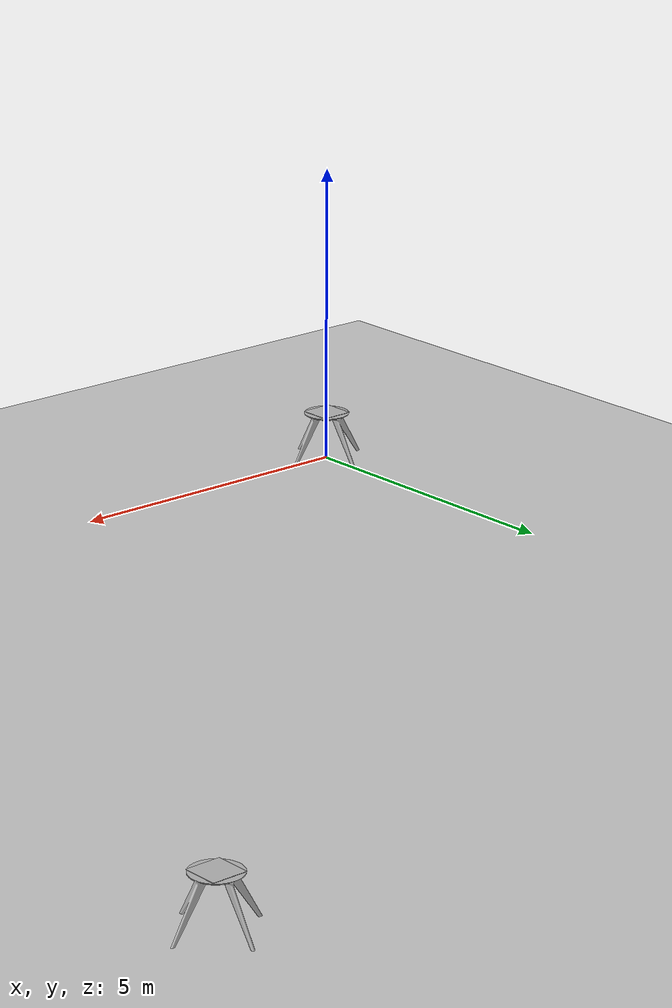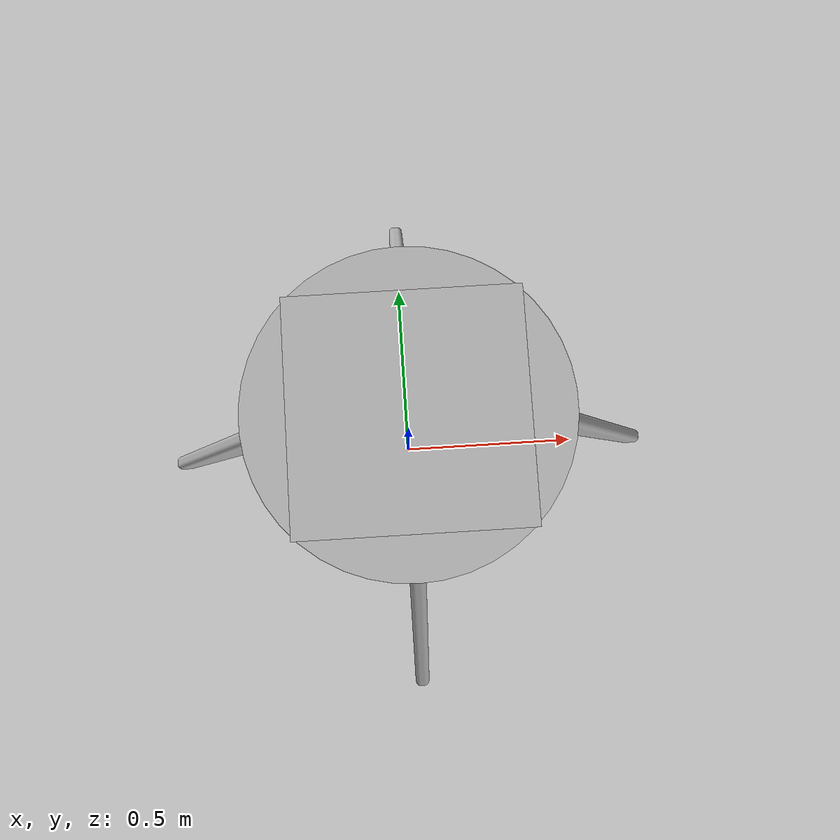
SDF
<?xml version="1.0" ?>
<sdf version="1.4">

	<world name="Charge Site">

	    <include>
			<uri>model://ground_plane</uri>
	    </include>

	    <include>
      		<uri>model://sun</uri>
	    </include>

        <include>
      		<uri>model://Charge_Site</uri>
    	</include>

	    <plugin name="ros_interface_plugin" filename="librotors_gazebo_ros_interface_plugin.so"/>
	    <plugin name="ros_link_attacher_plugin" filename="libgazebo_ros_link_attacher.so"/>

	    <spherical_coordinates>

	    	<surface_model>EARTH_WGS84</surface_model>
	    	<latitude_deg>47.3667</latitude_deg>
	    	<longitude_deg>8.5500</longitude_deg>
	    	<elevation>500.0</elevation>
	    	<heading_deg>0</heading_deg>

	    </spherical_coordinates>

	    <physics type='ode'>

	    	<ode>
	    		<solver>
	    			<type>quick</type>
	    			<iters>1000</iters>
	    			<sor>1.3</sor>
	    		</solver>

	    		<constraints>
	    			<cfm>0</cfm>
	    			<erp>0.2</erp>
	    			<contact_max_correcting_vel>100</contact_max_correcting_vel>
	    			<contact_surface_layer>0.001</contact_surface_layer>
	    		</constraints>
	    	</ode>

	    	<max_step_size>0.01</max_step_size>
	    	<real_time_factor>1</real_time_factor>
	    	<real_time_update_rate>100</real_time_update_rate>
	    	<gravity>0 0 -9.8</gravity>

	    </physics>

	</world>
</sdf>

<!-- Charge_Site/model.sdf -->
<sdf version="1.4">

	<model name='charge_site_1'>

		<static>True</static>
		<pose frame=''>0 0 0.8 0 0 0</pose>

		<link name='link_1'>

			<pose frame=''>0 0 0 0 0 0</pose>

			<inertial>
		      <mass value="0.0001" />
		      <inertia ixx="0.0001" ixy="0.0001" ixz="0.0001" iyy="0.0001" iyz="0.0001" izz="0.0001" />
		    </inertial>

			<visual name='visual_1'>

				<geometry>
					<mesh>
						<uri>model://Charge_Site/meshes/charging.dae</uri>
						<scale>0.5 0.5 0.5</scale>
					</mesh>
				</geometry>

			</visual>

			<collision name='collision_1'>

				<geometry>
					<mesh>
						<uri>model://Charge_Site/meshes/charging.dae</uri>
						<scale>0.5 0.5 0.5</scale>
					</mesh>
				</geometry>

		    </collision>

		</link>

		<link name="link_2">

			<pose>0 0 0.01 0 0 0</pose>

			<inertial>
		      <mass value="0.0001" />
		      <inertia ixx="0.0001" ixy="0.0001" ixz="0.0001" iyy="0.0001" iyz="0.0001" izz="0.0001" />
		    </inertial>

			<visual name='visual_2'>

				<geometry>
					<mesh>
						<uri>model://Charge_Site/meshes/plate.dae</uri>
						<scale>0.03 0.03 0.03</scale>
					</mesh>
				</geometry>

			</visual>

		</link>

		<link name='link_3'>

			<pose frame=''>13 13 0 0 0 0</pose>

			<inertial>
		      <mass value="0.0001" />
		      <inertia ixx="0.0001" ixy="0.0001" ixz="0.0001" iyy="0.0001" iyz="0.0001" izz="0.0001" />
		    </inertial>

			<visual name='visual_1'>

				<geometry>
					<mesh>
						<uri>model://Charge_Site/meshes/charging.dae</uri>
						<scale>0.5 0.5 0.5</scale>
					</mesh>
				</geometry>

			</visual>

			<collision name='collision_1'>

				<geometry>
					<mesh>
						<uri>model://Charge_Site/meshes/charging.dae</uri>
						<scale>0.5 0.5 0.5</scale>
					</mesh>
				</geometry>

		    </collision>

		</link>

		<link name="link_4">

			<pose>13 13 0.01 0 0 0</pose>

			<inertial>
		      <mass value="0.0001" />
		      <inertia ixx="0.0001" ixy="0.0001" ixz="0.0001" iyy="0.0001" iyz="0.0001" izz="0.0001" />
		    </inertial>

			<visual name='visual_2'>

				<geometry>
					<mesh>
						<uri>model://Charge_Site/meshes/plate.dae</uri>
						<scale>0.03 0.03 0.03</scale>
					</mesh>
				</geometry>

			</visual>

		</link>

		<joint name = "joint" type="fixed">
			<axis xyz="0 0 0" />
			<parent link="link_1" />
			<child link="link_2" />
	    </joint>

	    <joint name = "joint2" type="fixed">
			<axis xyz="0 0 0" />
			<parent link="link_3" />
			<child link="link_4" />
	    </joint>

	</model>
</sdf>
